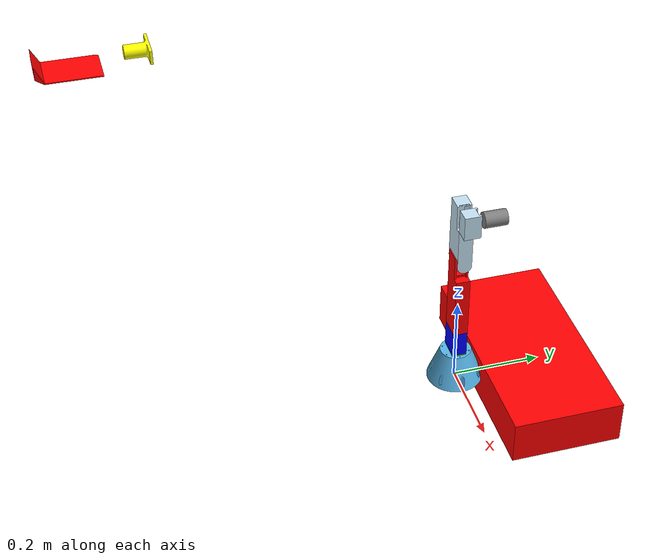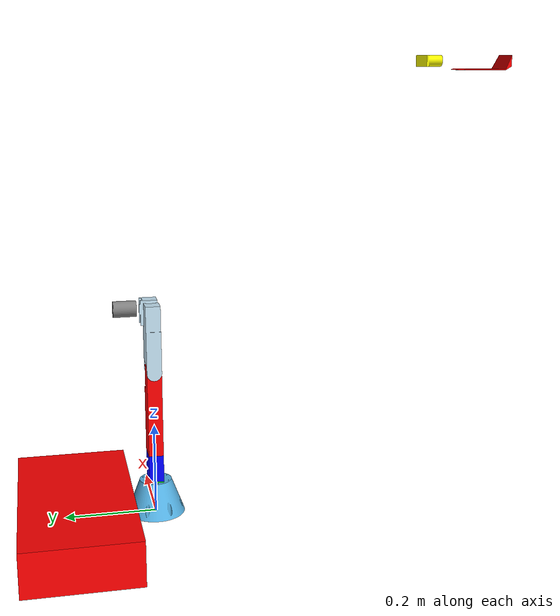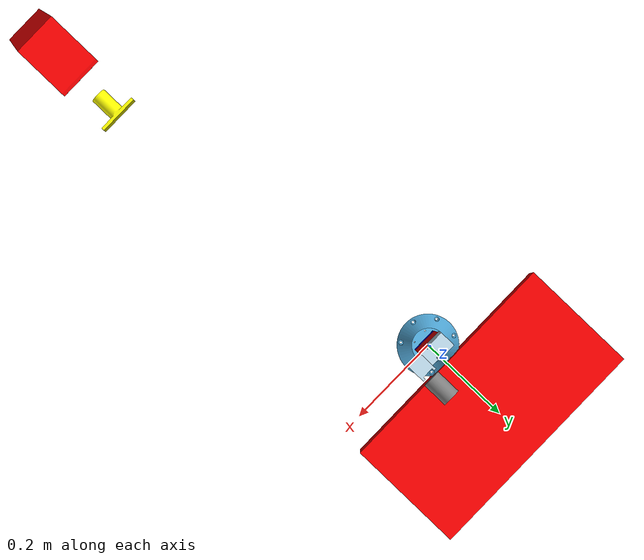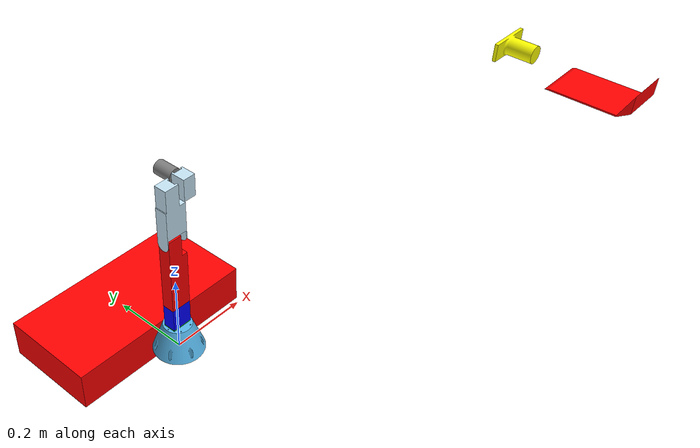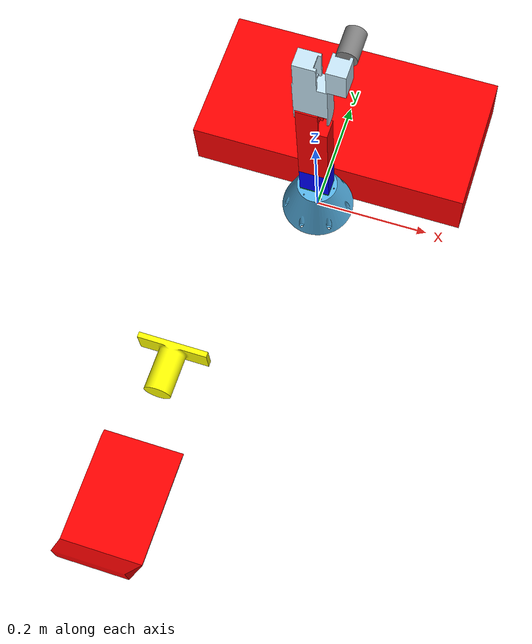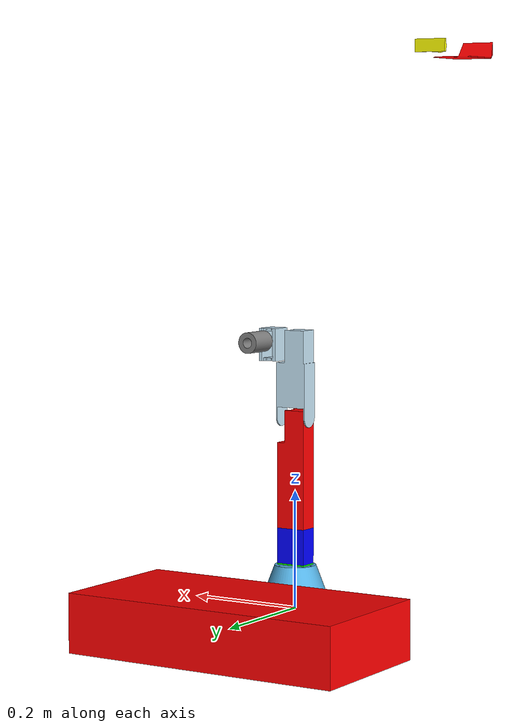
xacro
<?xml version="1.0"?>
<robot xmlns:xacro="http://www.ros.org/wiki/xacro" name="proto_bot">

    <xacro:arg name="is_sim" default="true"/>
    <xacro:include filename="$(find bot_desc)/urdf/bot_ros2_control.xacro"/>
    <xacro:include filename="$(find bot_desc)/urdf/bot_gazebo.xacro"/>
    <xacro:macro name="default_inertial" params="mass">
        <inertial>
            <origin xyz="0.0 0.0 0.0" rpy="0.0 0.0 0.0"/>
            <mass value="${mass}"/>
            <inertia ixx="1.0" ixy="0.0" ixz="0.0" iyy="1.0" iyz="0.0" izz="1.0"/>
        </inertial>
    </xacro:macro>

    <link name="world"/>
    <link name="base_cone">
        <visual>
            <origin xyz="0.0 0.0 0.0" rpy="0.0 0.0 0.0"/>
            <geometry>
                <mesh filename="package://bot_desc/meshes/new_base_cone.stl" scale="0.001 0.001 0.001"/>
            </geometry>
        </visual>
        <collision>
            <origin xyz="0.0 0.0 0.0" rpy="0.0 0.0 0.0"/>
            <geometry>
                <mesh filename="package://bot_desc/meshes/new_base_cone.stl" scale="0.001 0.001 0.001"/>
            </geometry>
        </collision>
        <xacro:default_inertial mass="1.0"/>
    </link>
    <joint name="world_base" type="fixed">
        <origin xyz="0.0 0.0 0.0" rpy="0.0 0.0 0.0"/>
        <parent link="world"/>
        <child link="base_cone"/>
    </joint>

    <link name="shoulder_attachment">
        <visual>
            <origin xyz="0.0 0.0 -0.075" rpy="0.0 0.0 0.0"/>
            <geometry>
                <mesh filename="package://bot_desc/meshes/shoulder_attachment.stl"/>
            </geometry>
            <material name="green_material">
                <color rgba="0 1 0 1"/>
            </material>
        </visual>
        <collision>
            <origin xyz="0.0 0.0 -0.075" rpy="0.0 0.0 0.0"/>
            <geometry>
                <mesh filename="package://bot_desc/meshes/shoulder_attachment.stl"/>
            </geometry>
        </collision>
        <xacro:default_inertial mass="1.0"/>
    </link>
    <joint name="base_to_shoulder_attachment" type="revolute">
        <origin xyz="0 0 0.075" rpy="0 0 0" />
        <parent link="base_cone"/>
        <child link="shoulder_attachment"/>
        <axis xyz="0.0 0.0 1.0"/>
        <limit lower="-1.57" upper="1.57" effort="0.0" velocity="0.0"/>
    </joint>

    <link name="shoulder_motor">
        <visual>
            <origin xyz="0.0 0.0 -0.0775" rpy="0.0 0.0 0.0"/>
            <geometry>
                <mesh filename="package://bot_desc/meshes/shoulder_motor.stl" />
            </geometry>
            <material name="blue">
                <color rgba="0 0 1 1"/>
            </material>
        </visual>
        <collision>
            <origin xyz="0.0 0.0 -0.0775" rpy="0.0 0.0 0.0"/>
            <geometry>
                <mesh filename="package://bot_desc/meshes/shoulder_motor.stl" />
            </geometry>
        </collision>
        <xacro:default_inertial mass="1.0"/>
    </link>
    <joint name="shoulder_attachment_to_shoulder_motor" type="fixed">
        <origin xyz="0.0 0.0 0.0025" rpy="0.0 0.0 0.0"/>
        <parent link="shoulder_attachment"/>
        <child link="shoulder_motor"/>
    </joint>

    <link name="shoulder_arm">
        <visual>
            <origin xyz="0.0 0.0 -0.1375" rpy="0.0 0.0 0.0"/>
            <geometry>
                <mesh filename="package://bot_desc/meshes/shoulder_arm.stl" />
            </geometry>
            <material name="red_material">
                <color rgba="1 0 0 1"/>
            </material>
        </visual>
        <collision>
            <origin xyz="0.0 0.0 -0.1375" rpy="0.0 0.0 0.0"/>
            <geometry>
                <mesh filename="package://bot_desc/meshes/shoulder_arm.stl" />
            </geometry>
        </collision>
        <xacro:default_inertial mass="1.0"/>
    </link>
    <joint name="shoulder_motor_to_shoulder_arm" type="revolute">
        <origin xyz="0.0 0.0 0.06" rpy="0.0 0.0 0.0"/>
        <parent link="shoulder_motor"/>
        <child link="shoulder_arm"/>
        <axis xyz="1.0 0.0 0.0"/>
        <limit lower="-1.57" upper="1.57" effort="0.0" velocity="0.0"/>
    </joint>

    <link name="elbow_arm">
        <visual>
            <origin xyz="0.0 0.0 -0.3225" rpy="0.0 0.0 0.0"/>
            <geometry>
                <mesh filename="package://bot_desc/meshes/elbow_arm.stl"/>
            </geometry>
            <material name="elbow_arm_material">
                <color rgba="0.76862745098039220171 0.88627450980392152857 0.95294117647058818044 1.0"/>
            </material>
        </visual>
        <collision>
            <origin xyz="0.0 0.0 -0.3275" rpy="0.0 0.0 0.0"/>
            <geometry>
                <mesh filename="package://bot_desc/meshes/elbow_arm.stl"/>
            </geometry>
        </collision>
        <xacro:default_inertial mass="1.0"/>
    </link>
    <joint name="shoulder_to_elbow" type="revolute">
        <origin xyz="0.0 0.0 0.185" rpy="0.0 0.0 0.0"/>
        <parent link="shoulder_arm"/>
        <child link="elbow_arm"/>
        <axis xyz="1.0 0.0 0.0"/>
        <limit lower="-1.57" upper="1.57" effort="0.0" velocity="0.0"/>
    </joint>

    <link name="wrist_attachment_1">
        <visual>
            <origin xyz="0.0 0.0 -0.4545" rpy="0.0 0.0 0.0"/>
            <geometry>
                <mesh filename="package://bot_desc/meshes/wrist_attachment_1.stl"/>
            </geometry>
            <material name="wrist_attachment_1_material">
                <color rgba="0.76862745098039220171 0.88627450980392152857 0.95294117647058818044 1.0"/>
            </material>
        </visual>
        <collision>
            <origin xyz="0.0 0.0 -0.4545" rpy="0.0 0.0 0.0"/>
            <geometry>
                <mesh filename="package://bot_desc/meshes/wrist_attachment_1.stl"/>
            </geometry>
        </collision>
        <xacro:default_inertial mass="1.0"/>
    </link>
    <joint name="elbow_to_wrist_attachment" type="revolute">
        <origin xyz="0.0 0.0 0.132" rpy="0.0 0.0 0.0"/>
        <parent link="elbow_arm"/>
        <child link="wrist_attachment_1"/>
        <axis xyz="1.0 0.0 0.0"/>
        <limit lower="-2.75" upper="2.75" effort="0.0" velocity="0.0"/>
    </joint>

    <link name='utensil_attachment'>
        <visual>
            <origin xyz="-0.04 -0.03825 -0.4625" rpy="0.0 0.0 0.0"/>
            <geometry>
                <mesh filename="package://bot_desc/meshes/utensil_attachment.stl"/>
            </geometry>
            <material name="utensil_attachment_material">
                <color rgba="0.49803921568627451677 0.49803921568627451677 0.49803921568627451677 1.0"/>
            </material>
        </visual>
        <collision>
            <origin xyz="-0.04 -0.03825 -0.4625" rpy="0.0 0.0 0.0"/>
            <geometry>
                <mesh filename="package://bot_desc/meshes/utensil_attachment.stl"/>
            </geometry>
        </collision>
        <xacro:default_inertial mass="1.0"/>
    </link>
    <joint name="wrist_to_utensil" type="revolute">
        <origin xyz="0.0425 0.03 0.0" rpy="0.0 0.0 0.0"/>
        <parent link="wrist_attachment_1"/>
        <child link="utensil_attachment"/>
        <axis xyz="0.0 1.0 0.0"/>
        <limit lower="-3.14" upper="3.14" effort="0.0" velocity="0.0"/>
    </joint>

    <link name='handle'>
        <visual>
            <origin xyz="0 0 0" rpy="0.0 0.0 0.0"/>
            <geometry>
                <mesh filename="package://bot_desc/meshes/handle.stl"/>
            </geometry>
            <material name="idk">
                <color rgba="1 1 0 1"/>
            </material>
        </visual>
        <collision>
            <origin xyz="0 0 0" rpy="0.0 0.0 0.0"/>
            <geometry>
                <mesh filename="package://bot_desc/meshes/handle.stl"/>
            </geometry>
        </collision>
        <xacro:default_inertial mass="1.0"/>
    </link>
    <joint name="utensil_to_spatula" type="fixed">
        <origin xyz="0.0425 -0.6 0.5" rpy="0.0 0.0 0.0"/>
        <parent link="utensil_attachment"/>
        <child link="handle"/>
    </joint>

    <link name='spatula'>
        <visual>
            <origin xyz="0 0 0" rpy="0.0 0.0 0.0"/>
            <geometry>
                <mesh filename="package://bot_desc/meshes/spatula.stl"/>
            </geometry>
            <material name="idk2">
                <color rgba="1 0 0 1"/>
            </material>
        </visual>
        <collision>
            <origin xyz="0 0 0" rpy="0.0 0.0 0.0"/>
            <geometry>
                <mesh filename="package://bot_desc/meshes/spatula.stl"/>
            </geometry>
        </collision>
        <xacro:default_inertial mass="1.0"/>
    </link>
    <joint name="spatula_to_handle" type="fixed">
        <origin xyz="0.0 -0.2 0.0" rpy="0.0 0.0 0.0"/>
        <parent link="handle"/>
        <child link="spatula"/>
    </joint>

    <link name="grill">
        <visual name="">
            <origin xyz="0 0.125 0.0" rpy="0.0 0.0 0.0"/>
            <geometry>
                <box size="0.500 0.250 0.1"/>
            </geometry>
            <material name="">
                <color rgba="1.0 0.0 0.0 1.0"/>
                <texture filename=""/>
            </material>
        </visual>
        <collision>
            <origin xyz="0 0 0.0" rpy="0.0 0.0 0.0"/>
            <geometry>
                <box size="0.500 0.250 0.0"/>
            </geometry>
        </collision>
        <xacro:default_inertial mass="1.0"/>
    </link>
    <joint name="grill_to_world" type="fixed">
        <origin xyz="0 0.0500 0.0" rpy="0.0 0.0 0.0"/>
        <parent link="world"/>
        <child link="grill"/>
    </joint>

</robot>
